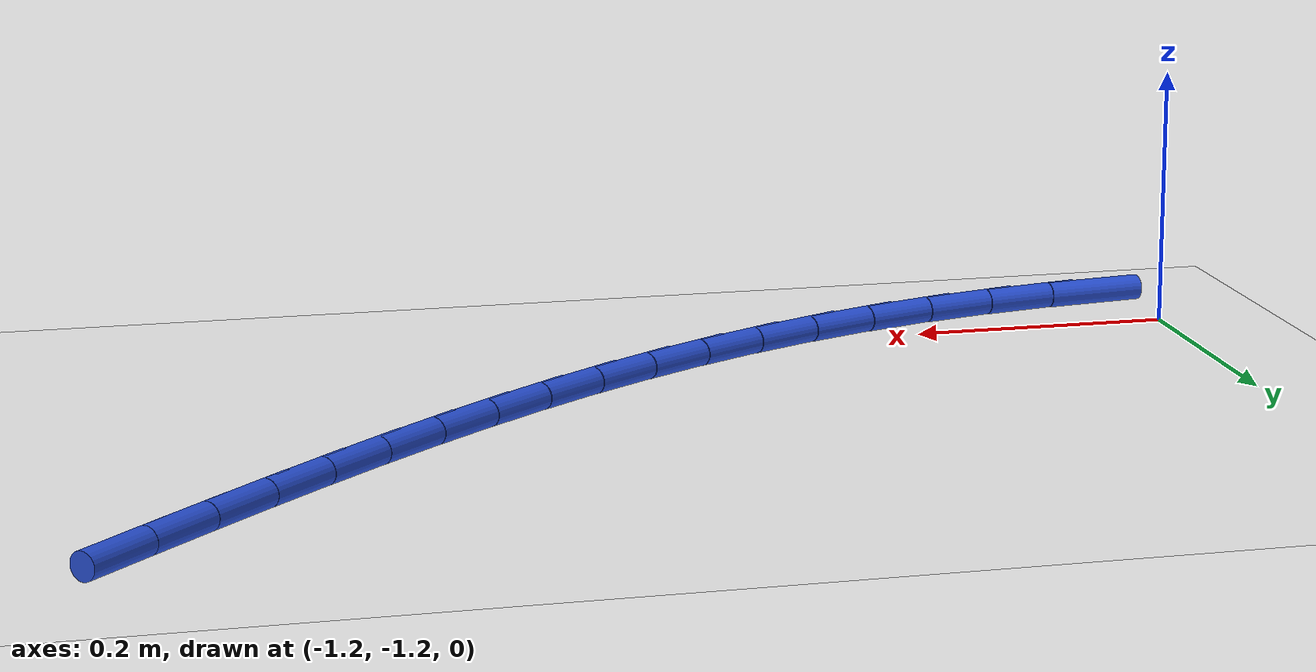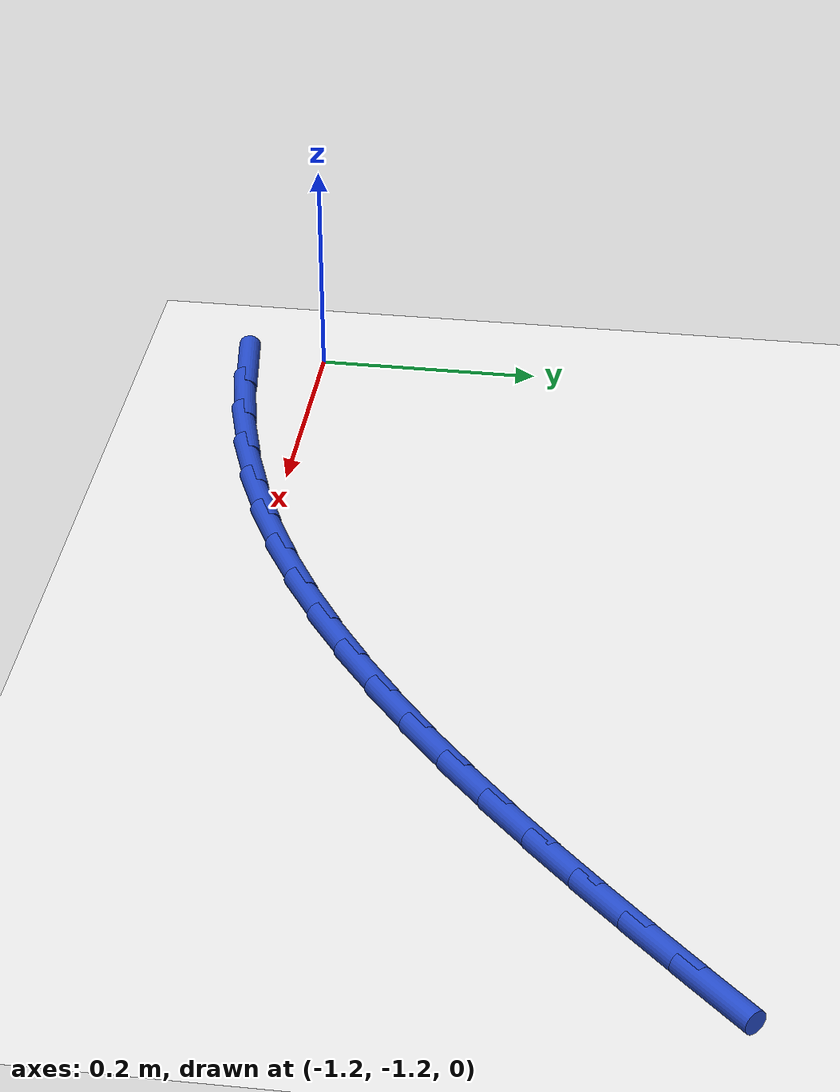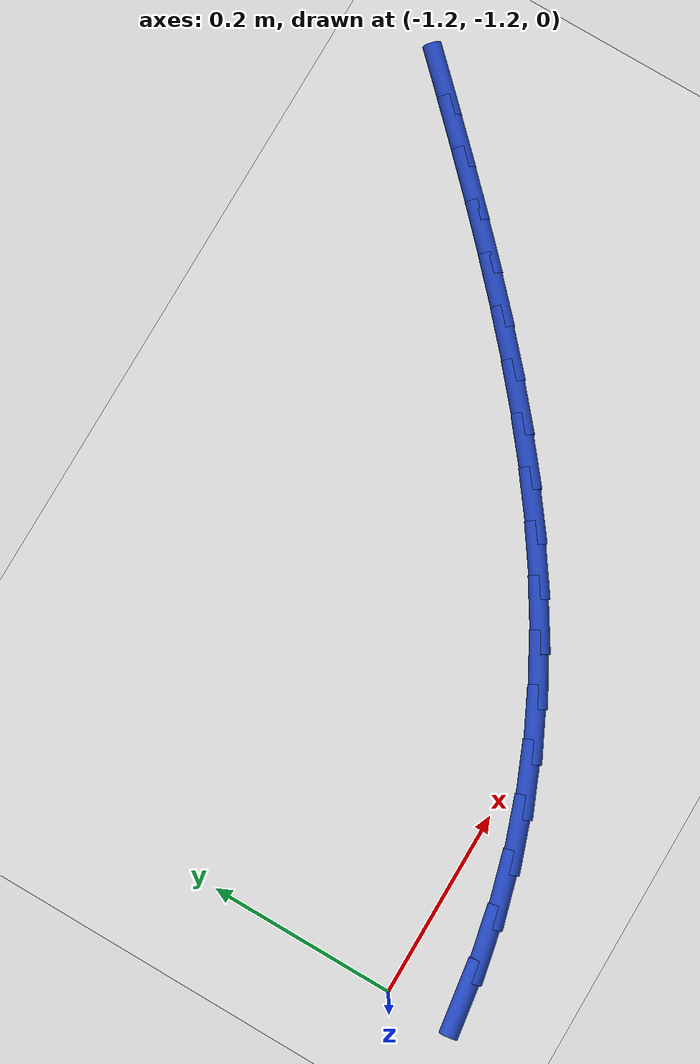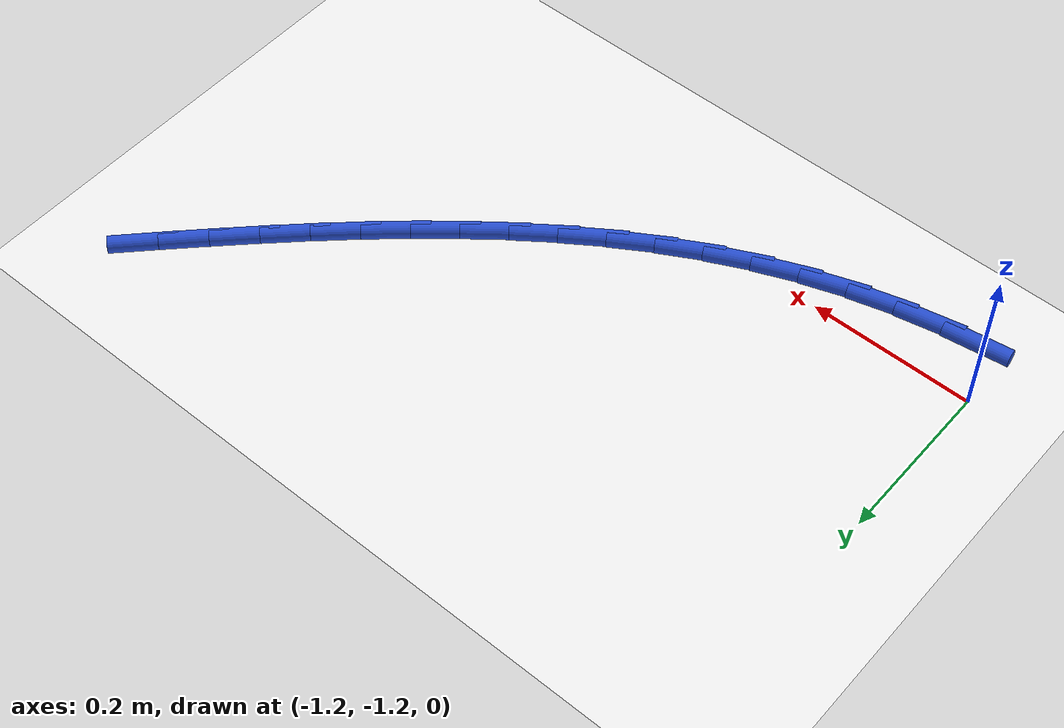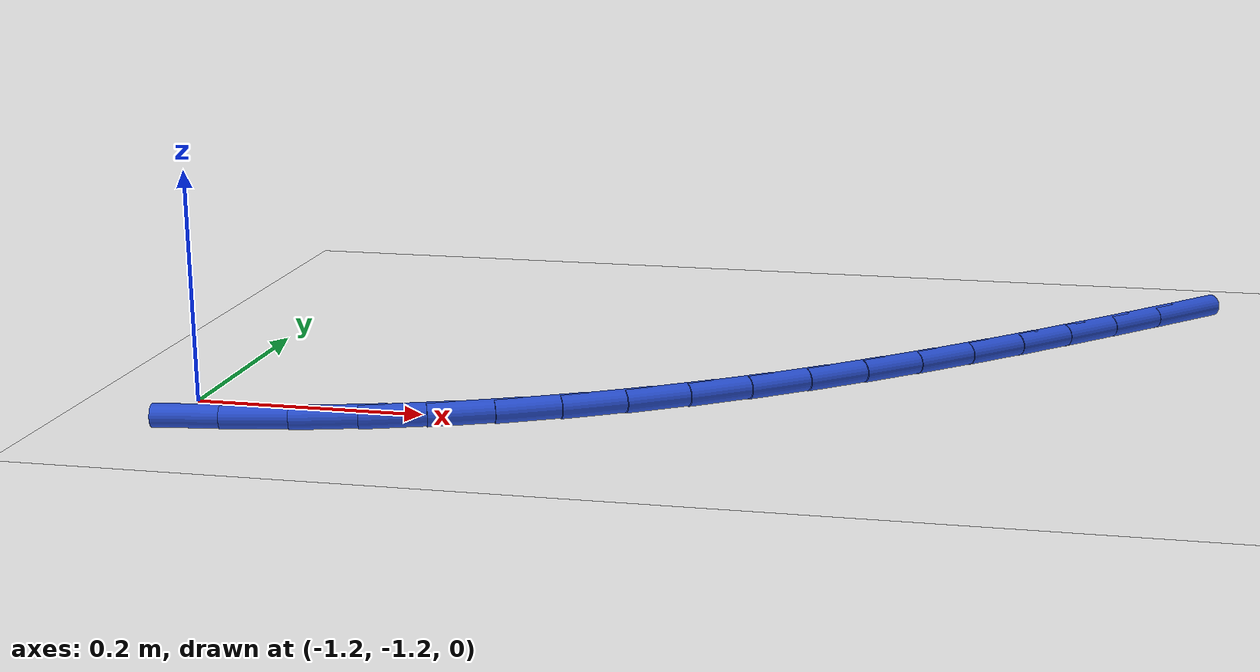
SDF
<sdf version="1.6">
 <world name="default">
  <model name="ground_plane">
   <static>1</static>
   <link name="link">
    <collision name="collision">
     <geometry><plane><normal>0 0 1</normal><size>100 100</size></plane></geometry>
     <surface><friction><ode><mu>100</mu><mu2>50</mu2></ode></friction></surface>
    </collision>
    <visual name="visual">
     <cast_shadows>0</cast_shadows>
     <geometry><plane><normal>0 0 1</normal><size>100 100</size></plane></geometry>
     <material>
      <script><uri>file://media/materials/scripts/gazebo.material</uri><name>Gazebo/WhiteGlow</name></script>
     </material>
    </visual>
   </link>
  </model>
  <model name="line">
   <link name="link_107">
    <pose>-1.1671158320910338 -1.266313627403584 0.01 0 1.57 0.14072093380125328</pose>
    <collision name="collision">
     <geometry><cylinder><radius>0.01</radius><length>0.08</length></cylinder></geometry>
    </collision>
    <visual name="visual">
     <material>
      <script><name>Gazebo/Blue</name><uri>file://media/materials/scripts/gazebo.material</uri></script>
     </material>
     <geometry><cylinder><radius>0.01</radius><length>0.08</length></cylinder></geometry>
    </visual>
   </link>
   <link name="link_108">
    <pose>-1.1108726510085583 -1.2583463746913062 0.01 0 1.57 0.2044229361424181</pose>
    <collision name="collision">
     <geometry><cylinder><radius>0.01</radius><length>0.08</length></cylinder></geometry>
    </collision>
    <visual name="visual">
     <material>
      <script><name>Gazebo/Blue</name><uri>file://media/materials/scripts/gazebo.material</uri></script>
     </material>
     <geometry><cylinder><radius>0.01</radius><length>0.08</length></cylinder></geometry>
    </visual>
   </link>
   <link name="link_109">
    <pose>-1.0555821679206607 -1.2468836137554438 0.01 0 1.57 0.26940693341394667</pose>
    <collision name="collision">
     <geometry><cylinder><radius>0.01</radius><length>0.08</length></cylinder></geometry>
    </collision>
    <visual name="visual">
     <material>
      <script><name>Gazebo/Blue</name><uri>file://media/materials/scripts/gazebo.material</uri></script>
     </material>
     <geometry><cylinder><radius>0.01</radius><length>0.08</length></cylinder></geometry>
    </visual>
   </link>
   <link name="link_110">
    <pose>-1.0016307925811496 -1.2319865735912363 0.01 0 1.57 0.33498654428507185</pose>
    <collision name="collision">
     <geometry><cylinder><radius>0.01</radius><length>0.08</length></cylinder></geometry>
    </collision>
    <visual name="visual">
     <material>
      <script><name>Gazebo/Blue</name><uri>file://media/materials/scripts/gazebo.material</uri></script>
     </material>
     <geometry><cylinder><radius>0.01</radius><length>0.08</length></cylinder></geometry>
    </visual>
   </link>
   <link name="link_111">
    <pose>-0.9492765943391834 -1.213761761563848 0.01 0 1.57 0.3975631612955185</pose>
    <collision name="collision">
     <geometry><cylinder><radius>0.01</radius><length>0.08</length></cylinder></geometry>
    </collision>
    <visual name="visual">
     <material>
      <script><name>Gazebo/Blue</name><uri>file://media/materials/scripts/gazebo.material</uri></script>
     </material>
     <geometry><cylinder><radius>0.01</radius><length>0.08</length></cylinder></geometry>
    </visual>
   </link>
   <link name="link_112">
    <pose>-0.8984665762144081 -1.1924254289369343 0.01 0 1.57 0.45604727646853516</pose>
    <collision name="collision">
     <geometry><cylinder><radius>0.01</radius><length>0.08</length></cylinder></geometry>
    </collision>
    <visual name="visual">
     <material>
      <script><name>Gazebo/Blue</name><uri>file://media/materials/scripts/gazebo.material</uri></script>
     </material>
     <geometry><cylinder><radius>0.01</radius><length>0.08</length></cylinder></geometry>
    </visual>
   </link>
   <link name="link_113">
    <pose>-0.8491015329483228 -1.1682101292097324 0.01 0 1.57 0.5100271884364148</pose>
    <collision name="collision">
     <geometry><cylinder><radius>0.01</radius><length>0.08</length></cylinder></geometry>
    </collision>
    <visual name="visual">
     <material>
      <script><name>Gazebo/Blue</name><uri>file://media/materials/scripts/gazebo.material</uri></script>
     </material>
     <geometry><cylinder><radius>0.01</radius><length>0.08</length></cylinder></geometry>
    </visual>
   </link>
   <link name="link_114">
    <pose>-0.8010822592824294 -1.1413484158814824 0.01 0 1.57 0.5592544580185596</pose>
    <collision name="collision">
     <geometry><cylinder><radius>0.01</radius><length>0.08</length></cylinder></geometry>
    </collision>
    <visual name="visual">
     <material>
      <script><name>Gazebo/Blue</name><uri>file://media/materials/scripts/gazebo.material</uri></script>
     </material>
     <geometry><cylinder><radius>0.01</radius><length>0.08</length></cylinder></geometry>
    </visual>
   </link>
   <link name="link_115">
    <pose>-0.7543095499582276 -1.112072842451423 0.01 0 1.57 0.6036174441051241</pose>
    <collision name="collision">
     <geometry><cylinder><radius>0.01</radius><length>0.08</length></cylinder></geometry>
    </collision>
    <visual name="visual">
     <material>
      <script><name>Gazebo/Blue</name><uri>file://media/materials/scripts/gazebo.material</uri></script>
     </material>
     <geometry><cylinder><radius>0.01</radius><length>0.08</length></cylinder></geometry>
    </visual>
   </link>
   <link name="link_116">
    <pose>-0.7086841997172179 -1.080615962418792 0.01 0 1.57 0.6431095589098385</pose>
    <collision name="collision">
     <geometry><cylinder><radius>0.01</radius><length>0.08</length></cylinder></geometry>
    </collision>
    <visual name="visual">
     <material>
      <script><name>Gazebo/Blue</name><uri>file://media/materials/scripts/gazebo.material</uri></script>
     </material>
     <geometry><cylinder><radius>0.01</radius><length>0.08</length></cylinder></geometry>
    </visual>
   </link>
   <link name="link_117">
    <pose>-0.6641070033008997 -1.0472103292828285 0.01 0 1.57 0.6777974998354019</pose>
    <collision name="collision">
     <geometry><cylinder><radius>0.01</radius><length>0.08</length></cylinder></geometry>
    </collision>
    <visual name="visual">
     <material>
      <script><name>Gazebo/Blue</name><uri>file://media/materials/scripts/gazebo.material</uri></script>
     </material>
     <geometry><cylinder><radius>0.01</radius><length>0.08</length></cylinder></geometry>
    </visual>
   </link>
   <link name="link_118">
    <pose>-0.6204787554507751 -1.0120884965427717 0.01 0 1.57 0.707792733491138</pose>
    <collision name="collision">
     <geometry><cylinder><radius>0.01</radius><length>0.08</length></cylinder></geometry>
    </collision>
    <visual name="visual">
     <material>
      <script><name>Gazebo/Blue</name><uri>file://media/materials/scripts/gazebo.material</uri></script>
     </material>
     <geometry><cylinder><radius>0.01</radius><length>0.08</length></cylinder></geometry>
    </visual>
   </link>
   <link name="link_119">
    <pose>-0.5777002509083435 -0.9754830176978597 0.01 0 1.57 0.7332277439239717</pose>
    <collision name="collision">
     <geometry><cylinder><radius>0.01</radius><length>0.08</length></cylinder></geometry>
    </collision>
    <visual name="visual">
     <material>
      <script><name>Gazebo/Blue</name><uri>file://media/materials/scripts/gazebo.material</uri></script>
     </material>
     <geometry><cylinder><radius>0.01</radius><length>0.08</length></cylinder></geometry>
    </visual>
   </link>
   <link name="link_120">
    <pose>-0.5356722844151056 -0.9376264462473318 0.01 0 1.57 0.7542373025679805</pose>
    <collision name="collision">
     <geometry><cylinder><radius>0.01</radius><length>0.08</length></cylinder></geometry>
    </collision>
    <visual name="visual">
     <material>
      <script><name>Gazebo/Blue</name><uri>file://media/materials/scripts/gazebo.material</uri></script>
     </material>
     <geometry><cylinder><radius>0.01</radius><length>0.08</length></cylinder></geometry>
    </visual>
   </link>
   <link name="link_121">
    <pose>-0.4942956507125615 -0.898751335690426 0.01 0 1.57 0.7709442865092333</pose>
    <collision name="collision">
     <geometry><cylinder><radius>0.01</radius><length>0.08</length></cylinder></geometry>
    </collision>
    <visual name="visual">
     <material>
      <script><name>Gazebo/Blue</name><uri>file://media/materials/scripts/gazebo.material</uri></script>
     </material>
     <geometry><cylinder><radius>0.01</radius><length>0.08</length></cylinder></geometry>
    </visual>
   </link>
   <link name="link_122">
    <pose>-0.45347114454221105 -0.8590902395263812 0.01 0 1.57 0.7834492491039312</pose>
    <collision name="collision">
     <geometry><cylinder><radius>0.01</radius><length>0.08</length></cylinder></geometry>
    </collision>
    <visual name="visual">
     <material>
      <script><name>Gazebo/Blue</name><uri>file://media/materials/scripts/gazebo.material</uri></script>
     </material>
     <geometry><cylinder><radius>0.01</radius><length>0.08</length></cylinder></geometry>
    </visual>
   </link>
   <link name="link_123">
    <pose>-0.4130995606455561 -0.818875711254437 0.01 0 1.57 0.7918241268529428</pose>
    <collision name="collision">
     <geometry><cylinder><radius>0.01</radius><length>0.08</length></cylinder></geometry>
    </collision>
    <visual name="visual">
     <material>
      <script><name>Gazebo/Blue</name><uri>file://media/materials/scripts/gazebo.material</uri></script>
     </material>
     <geometry><cylinder><radius>0.01</radius><length>0.08</length></cylinder></geometry>
    </visual>
   </link>
   <link name="link_124">
    <pose>-0.3730817468683066 -0.7783402580020514 0.01 0 1.57 0.7985964341254517</pose>
    <collision name="collision">
     <geometry><cylinder><radius>0.01</radius><length>0.08</length></cylinder></geometry>
    </collision>
    <visual name="visual">
     <material>
      <script><name>Gazebo/Blue</name><uri>file://media/materials/scripts/gazebo.material</uri></script>
     </material>
     <geometry><cylinder><radius>0.01</radius><length>0.08</length></cylinder></geometry>
    </visual>
   </link>
  </model>
 </world>
</sdf>
